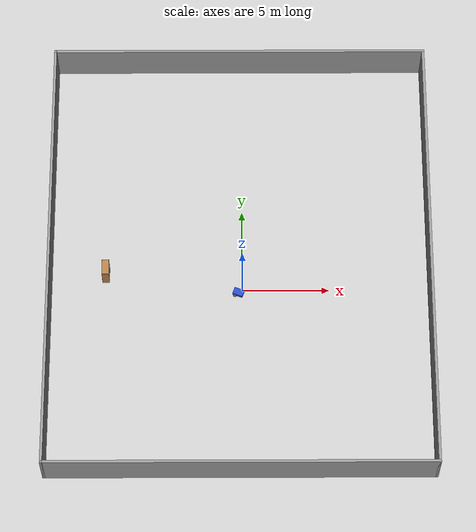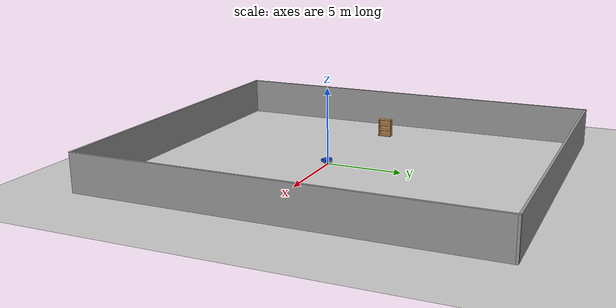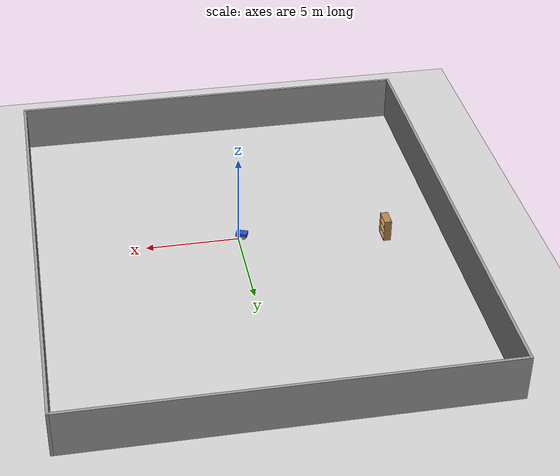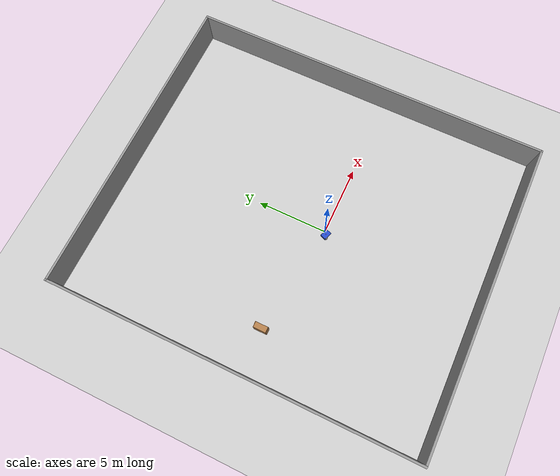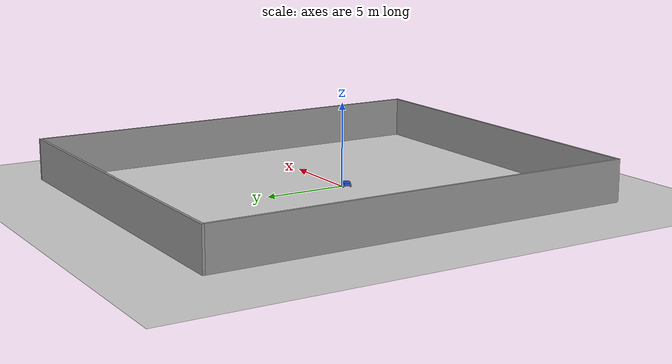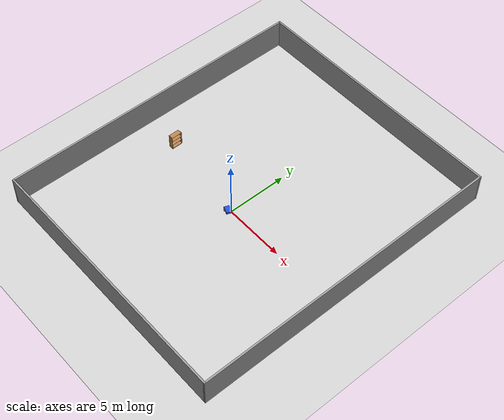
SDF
<sdf version="1.7">
 <world name="default">
  <model name="ground_plane">
   <static>1</static>
   <link name="link">
    <collision name="collision">
     <geometry><plane><normal>0 0 1</normal><size>100 100</size></plane></geometry>
     <surface>
      <contact><collide_bitmask>65535</collide_bitmask></contact>
      <friction><ode><mu>100</mu><mu2>50</mu2></ode></friction>
     </surface>
    </collision>
    <visual name="visual">
     <cast_shadows>0</cast_shadows>
     <geometry><plane><normal>0 0 1</normal><size>100 100</size></plane></geometry>
     <material>
      <script><uri>file://media/materials/scripts/gazebo.material</uri><name>Gazebo/Grey</name></script>
     </material>
    </visual>
   </link>
  </model>
  <model name="bookshelf">
   <static>1</static>
   <link name="link">
    <inertial><mass>1</mass></inertial>
    <collision name="back">
     <pose>0 0.005 0.6 0 -0 0</pose>
     <geometry><box><size>0.9 0.01 1.2</size></box></geometry>
    </collision>
    <visual name="visual1">
     <pose>0 0.005 0.6 0 -0 0</pose>
     <geometry><box><size>0.9 0.01 1.2</size></box></geometry>
     <material>
      <script><uri>file://media/materials/scripts/gazebo.material</uri><name>Gazebo/Wood</name></script>
     </material>
    </visual>
    <collision name="left_side">
     <pose>0.45 -0.195 0.6 0 -0 0</pose>
     <geometry><box><size>0.02 0.4 1.2</size></box></geometry>
    </collision>
    <visual name="visual2">
     <pose>0.45 -0.195 0.6 0 -0 0</pose>
     <geometry><box><size>0.02 0.4 1.2</size></box></geometry>
     <material>
      <script><uri>file://media/materials/scripts/gazebo.material</uri><name>Gazebo/Wood</name></script>
     </material>
    </visual>
    <collision name="right_side">
     <pose>-0.45 -0.195 0.6 0 -0 0</pose>
     <geometry><box><size>0.02 0.4 1.2</size></box></geometry>
    </collision>
    <visual name="visual3">
     <pose>-0.45 -0.195 0.6 0 -0 0</pose>
     <geometry><box><size>0.02 0.4 1.2</size></box></geometry>
     <material>
      <script><uri>file://media/materials/scripts/gazebo.material</uri><name>Gazebo/Wood</name></script>
     </material>
    </visual>
    <collision name="bottom">
     <pose>0 -0.195 0.03 0 -0 0</pose>
     <geometry><box><size>0.88 0.4 0.06</size></box></geometry>
    </collision>
    <visual name="visual4">
     <pose>0 -0.195 0.03 0 -0 0</pose>
     <geometry><box><size>0.88 0.4 0.06</size></box></geometry>
     <material>
      <script><uri>file://media/materials/scripts/gazebo.material</uri><name>Gazebo/Wood</name></script>
     </material>
    </visual>
    <collision name="top">
     <pose>0 -0.195 1.19 0 -0 0</pose>
     <geometry><box><size>0.88 0.4 0.02</size></box></geometry>
    </collision>
    <visual name="visual5">
     <pose>0 -0.195 1.19 0 -0 0</pose>
     <geometry><box><size>0.88 0.4 0.02</size></box></geometry>
     <material>
      <script><uri>file://media/materials/scripts/gazebo.material</uri><name>Gazebo/Wood</name></script>
     </material>
    </visual>
    <collision name="low_shelf">
     <pose>0 -0.195 0.43 0 -0 0</pose>
     <geometry><box><size>0.88 0.4 0.02</size></box></geometry>
    </collision>
    <visual name="visual6">
     <pose>0 -0.195 0.43 0 -0 0</pose>
     <geometry><box><size>0.88 0.4 0.02</size></box></geometry>
     <material>
      <script><uri>file://media/materials/scripts/gazebo.material</uri><name>Gazebo/Wood</name></script>
     </material>
    </visual>
    <collision name="high_shelf">
     <pose>0 -0.195 0.8 0 -0 0</pose>
     <geometry><box><size>0.88 0.4 0.02</size></box></geometry>
    </collision>
    <visual name="visual7">
     <pose>0 -0.195 0.8 0 -0 0</pose>
     <geometry><box><size>0.88 0.4 0.02</size></box></geometry>
     <material>
      <script><uri>file://media/materials/scripts/gazebo.material</uri><name>Gazebo/Wood</name></script>
     </material>
    </visual>
   </link>
   <pose>-8.06127 1.00754 0 0 -0 1.57611</pose>
  </model>
  <model name="small_room">
   <pose>-0.133591 1.6178 0 0 -0 0</pose>
   <link name="Wall_37">
    <collision name="Wall_37_Collision">
     <geometry><box><size>26 0.15 2.5</size></box></geometry>
     <pose>0 0 1.25 0 -0 0</pose>
    </collision>
    <visual name="Wall_37_Visual">
     <pose>0 0 1.25 0 -0 0</pose>
     <geometry><box><size>26 0.15 2.5</size></box></geometry>
     <material>
      <script><uri>file://media/materials/scripts/gazebo.material</uri><name>Gazebo/Grey</name></script>
      <ambient>1 1 1 1</ambient>
     </material>
     <meta><layer>0</layer></meta>
    </visual>
    <pose>-10.925 -0 0 0 -0 -1.5708</pose>
   </link>
   <link name="Wall_38">
    <collision name="Wall_38_Collision">
     <geometry><box><size>22 0.15 2.5</size></box></geometry>
     <pose>0 0 1.25 0 -0 0</pose>
    </collision>
    <visual name="Wall_38_Visual">
     <pose>0 0 1.25 0 -0 0</pose>
     <geometry><box><size>22 0.15 2.5</size></box></geometry>
     <material>
      <script><uri>file://media/materials/scripts/gazebo.material</uri><name>Gazebo/Grey</name></script>
      <ambient>1 1 1 1</ambient>
     </material>
     <meta><layer>0</layer></meta>
    </visual>
    <pose>0 -12.925 0 0 -0 0</pose>
   </link>
   <link name="Wall_39">
    <collision name="Wall_39_Collision">
     <geometry><box><size>26 0.15 2.5</size></box></geometry>
     <pose>0 0 1.25 0 -0 0</pose>
    </collision>
    <visual name="Wall_39_Visual">
     <pose>0 0 1.25 0 -0 0</pose>
     <geometry><box><size>26 0.15 2.5</size></box></geometry>
     <material>
      <script><uri>file://media/materials/scripts/gazebo.material</uri><name>Gazebo/Grey</name></script>
      <ambient>1 1 1 1</ambient>
     </material>
     <meta><layer>0</layer></meta>
    </visual>
    <pose>10.925 -0 0 0 -0 1.5708</pose>
   </link>
   <link name="Wall_40">
    <collision name="Wall_40_Collision">
     <geometry><box><size>22 0.15 2.5</size></box></geometry>
     <pose>0 0 1.25 0 -0 0</pose>
    </collision>
    <visual name="Wall_40_Visual">
     <pose>0 0 1.25 0 -0 0</pose>
     <geometry><box><size>22 0.15 2.5</size></box></geometry>
     <material>
      <script><uri>file://media/materials/scripts/gazebo.material</uri><name>Gazebo/Grey</name></script>
      <ambient>1 1 1 1</ambient>
     </material>
     <meta><layer>0</layer></meta>
    </visual>
    <pose>0 12.925 0 0 -0 3.14159</pose>
   </link>
   <static>1</static>
  </model>
  <model name="my_robot_1">
   <link name="base_footprint">
    <inertial>
     <pose>0.017857 0 0.18875 0 -0 0</pose>
     <mass>5.6</mass>
     <inertia>
      <ixx>1.34582</ixx>
      <ixy>0</ixy>
      <ixz>0.013875</ixz>
      <iyy>2.69737</iyy>
      <iyz>0</iyz>
      <izz>3.48539</izz>
     </inertia>
    </inertial>
    <collision name="base_footprint_fixed_joint_lump__base_link_collision">
     <pose>0 0 0.2 0 -0 0</pose>
     <geometry><box><size>0.6 0.4 0.2</size></box></geometry>
    </collision>
    <collision name="base_footprint_fixed_joint_lump__caster_wheel_link_collision_1">
     <pose>0.2 0 0.05 0 -0 0</pose>
     <geometry><sphere><radius>0.05</radius></sphere></geometry>
     <surface><friction><ode><mu>0.1</mu><mu2>0.1</mu2></ode></friction></surface>
    </collision>
    <collision name="base_footprint_fixed_joint_lump__lidar_link_collision_2">
     <pose>0 0 0.32 0 -0 0</pose>
     <geometry><cylinder><length>0.01</length><radius>0.01</radius></cylinder></geometry>
    </collision>
    <visual name="base_footprint_fixed_joint_lump__base_link_visual">
     <pose>0 0 0.2 0 -0 0</pose>
     <geometry><box><size>0.6 0.4 0.2</size></box></geometry>
     <material>
      <script><name>Gazebo/Blue</name><uri>file://media/materials/scripts/gazebo.material</uri></script>
     </material>
    </visual>
    <visual name="base_footprint_fixed_joint_lump__caster_wheel_link_visual_1">
     <pose>0.2 0 0.05 0 -0 0</pose>
     <geometry><sphere><radius>0.05</radius></sphere></geometry>
     <material>
      <script><name>Gazebo/Grey</name><uri>file://media/materials/scripts/gazebo.material</uri></script>
     </material>
    </visual>
    <visual name="base_footprint_fixed_joint_lump__lidar_link_visual_2">
     <pose>0 0 0.32 0 -0 0</pose>
     <geometry><cylinder><length>0.01</length><radius>0.01</radius></cylinder></geometry>
     <material>
      <script><name>Gazebo/Red</name><uri>file://media/materials/scripts/gazebo.material</uri></script>
     </material>
    </visual>
    <sensor name="laser" type="ray">
     <visualize>0</visualize>
     <update_rate>60</update_rate>
     <ray>
      <scan>
       <horizontal>
        <samples>91</samples>
        <min_angle>-3.14159</min_angle>
        <max_angle>3.14159</max_angle>
        <resolution>1</resolution>
       </horizontal>
       <vertical><samples>1</samples><min_angle>0</min_angle><max_angle>0</max_angle></vertical>
      </scan>
      <range><min>0.35</min><max>2</max></range>
     </ray>
     <plugin name="laser_controller" filename="libgazebo_ros_ray_sensor.so">
      <ros><argument>~/out:=scan</argument><namespace>robot_1</namespace></ros>
      <output_type>sensor_msgs/LaserScan</output_type>
      <frame_name>lidar_link</frame_name>
     </plugin>
     <pose>0 0 0.32 0 -0 0</pose>
    </sensor>
   </link>
   <joint name="base_left_wheel_joint" type="revolute">
    <pose relative_to="base_footprint">-0.15 0.225 0.1 0 -0 0</pose>
    <parent>base_footprint</parent>
    <child>left_wheel_link</child>
    <axis>
     <xyz>0 1 0</xyz>
     <limit><lower>-1e+16</lower><upper>1e+16</upper></limit>
     <dynamics><spring_reference>0</spring_reference><spring_stiffness>0</spring_stiffness></dynamics>
    </axis>
   </joint>
   <link name="left_wheel_link">
    <pose relative_to="base_left_wheel_joint">0 0 0 0 -0 0</pose>
    <inertial>
     <pose>0 0 0 1.5708 -0 0</pose>
     <mass>1</mass>
     <inertia>
      <ixx>0.00270833</ixx>
      <ixy>0</ixy>
      <ixz>0</ixz>
      <iyy>0.00270833</iyy>
      <iyz>0</iyz>
      <izz>0.005</izz>
     </inertia>
    </inertial>
    <collision name="left_wheel_link_collision">
     <pose>0 0 0 1.5708 -0 0</pose>
     <geometry><cylinder><length>0.05</length><radius>0.1</radius></cylinder></geometry>
    </collision>
    <visual name="left_wheel_link_visual">
     <pose>0 0 0 1.5708 -0 0</pose>
     <geometry><cylinder><length>0.05</length><radius>0.1</radius></cylinder></geometry>
     <material>
      <script><name>Gazebo/Grey</name><uri>file://media/materials/scripts/gazebo.material</uri></script>
     </material>
    </visual>
   </link>
   <joint name="base_right_wheel_joint" type="revolute">
    <pose relative_to="base_footprint">-0.15 -0.225 0.1 0 -0 0</pose>
    <parent>base_footprint</parent>
    <child>right_wheel_link</child>
    <axis>
     <xyz>0 1 0</xyz>
     <limit><lower>-1e+16</lower><upper>1e+16</upper></limit>
     <dynamics><spring_reference>0</spring_reference><spring_stiffness>0</spring_stiffness></dynamics>
    </axis>
   </joint>
   <link name="right_wheel_link">
    <pose relative_to="base_right_wheel_joint">0 0 0 0 -0 0</pose>
    <inertial>
     <pose>0 0 0 1.5708 -0 0</pose>
     <mass>1</mass>
     <inertia>
      <ixx>0.00270833</ixx>
      <ixy>0</ixy>
      <ixz>0</ixz>
      <iyy>0.00270833</iyy>
      <iyz>0</iyz>
      <izz>0.005</izz>
     </inertia>
    </inertial>
    <collision name="right_wheel_link_collision">
     <pose>0 0 0 1.5708 -0 0</pose>
     <geometry><cylinder><length>0.05</length><radius>0.1</radius></cylinder></geometry>
    </collision>
    <visual name="right_wheel_link_visual">
     <pose>0 0 0 1.5708 -0 0</pose>
     <geometry><cylinder><length>0.05</length><radius>0.1</radius></cylinder></geometry>
     <material>
      <script><name>Gazebo/Grey</name><uri>file://media/materials/scripts/gazebo.material</uri></script>
     </material>
    </visual>
   </link>
   <static>0</static>
   <plugin name="diff_drive_controller" filename="libgazebo_ros_diff_drive.so">
    <update_rate>50</update_rate>
    <left_joint>base_left_wheel_joint</left_joint>
    <right_joint>base_right_wheel_joint</right_joint>
    <wheel_separation>0.45</wheel_separation>
    <wheel_diameter>0.2</wheel_diameter>
    <command_topic>cmd_vel</command_topic>
    <publish_odom>1</publish_odom>
    <publish_odom_tf>1</publish_odom_tf>
    <publish_wheel_tf>1</publish_wheel_tf>
    <odometry_topic>odom</odometry_topic>
    <odometry_frame>odom</odometry_frame>
    <robot_base_frame>base_footprint</robot_base_frame>
    <ros><namespace>robot_1</namespace></ros>
   </plugin>
   <pose>-0.212599 -0.180948 1.2e-05 1e-05 -5.8e-05 -0.362887</pose>
  </model>
 </world>
</sdf>
